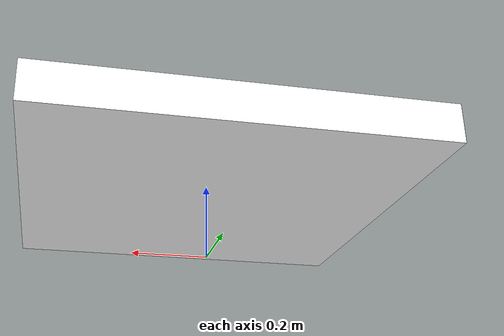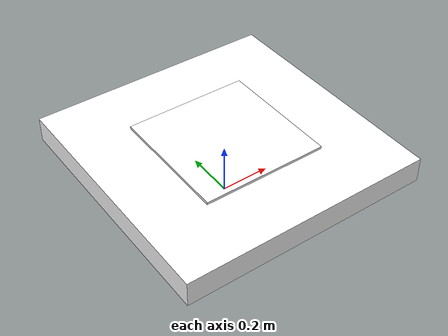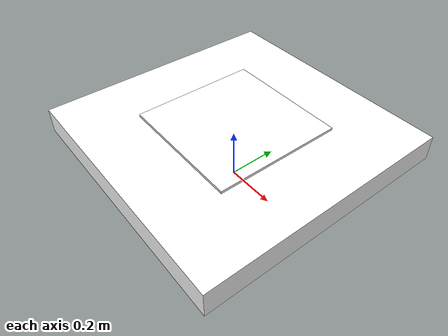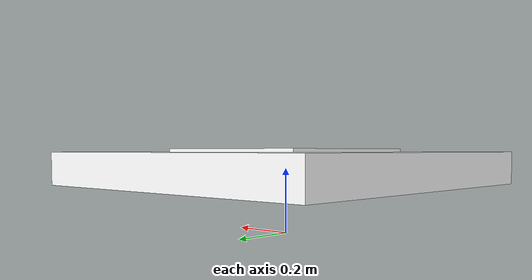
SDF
<?xml version="1.0" encoding="UTF-8"?>
<sdf version="1.9">
  <model name="platform_model">
    <link name="base_link">
      <visual name="platform_visual">
        <geometry>
          <box>
            <size>1 1 0.1</size>
          </box>
        </geometry>
        <material>
            <ambient>1 1 1 1</ambient>
            <diffuse>1 1 1 1</diffuse>
            <specular>0.1 0.1 0.1 1</specular>
        </material>
      </visual>
      <visual name='tag_visual'>
        <pose>0 0 0.05 0 0 0</pose>
        <geometry>
          <box>
            <size>0.5 0.5 0.02</size>
          </box>
        </geometry>
        <material>
          <ambient>1 1 1 1</ambient>
          <diffuse>1 1 1 1</diffuse>
          <specular>0.5 0.5 0.5 1</specular>
          <pbr>
            <metal>
              <albedo_map>model://moving_platform/arucotag.png</albedo_map>
            </metal>
          </pbr>
        </material>
      </visual>
      <!-- Coordinate axes for platform -->
      <collision name="platform_collision">
        <geometry>
          <box>
            <size>1 1 0.1</size>
          </box>
        </geometry>
      </collision>
      <pose degrees='true'>0 0 0.2 0 0 0</pose>
      <inertial>
          <mass>10000</mass>
          <inertia>
              <ixx>10000</ixx>
              <iyy>10000</iyy>
              <izz>10000</izz>
          </inertia>
      </inertial>
      <sensor name="navsat_sensor" type="navsat">
        <always_on>1</always_on>
        <update_rate>30</update_rate>
      </sensor>
    </link>
    <plugin filename="gz-sim-odometry-publisher-system"
            name="gz::sim::systems::OdometryPublisher">
      <dimensions>3</dimensions>
      <odom_publish_frequency>60.0</odom_publish_frequency>
    </plugin>
    <!-- Velocity control plugin -->
    <plugin
      filename="gz-sim-velocity-control-system"
      name="gz::sim::systems::VelocityControl">
      <!-- vels for circle moving y=-1 ang_z=-0.2 v = wr, w = v/r -->
      <!-- r = 1.5, for v = 0.5 -> w = 0.5/1.5 = 0.33333, for v = 0.2 -> w = 0.2/1.5 = 0.13333 -->
      <initial_linear>0 0 0</initial_linear>
      <initial_angular>0 0 0.0</initial_angular>
      <lin_vel_min>-1 -1 -1</lin_vel_min>
      <lin_vel_max>1 1 1</lin_vel_max>
      <ang_vel_min>-1 -1 -1</ang_vel_min>
      <ang_vel_max>1 1 1</ang_vel_max>
      <link_name>platform_link</link_name>  <!-- Explicitly set the link -->
    </plugin>
  </model>
</sdf>
